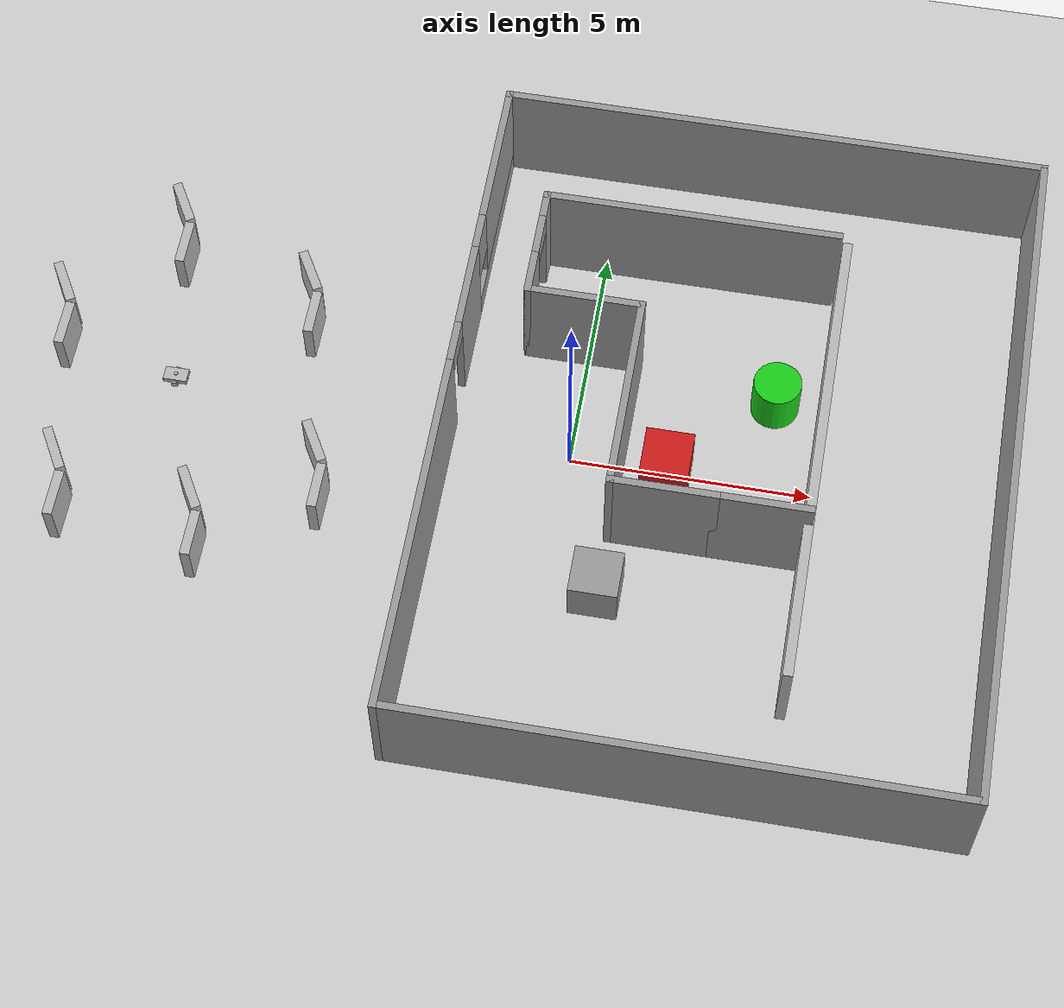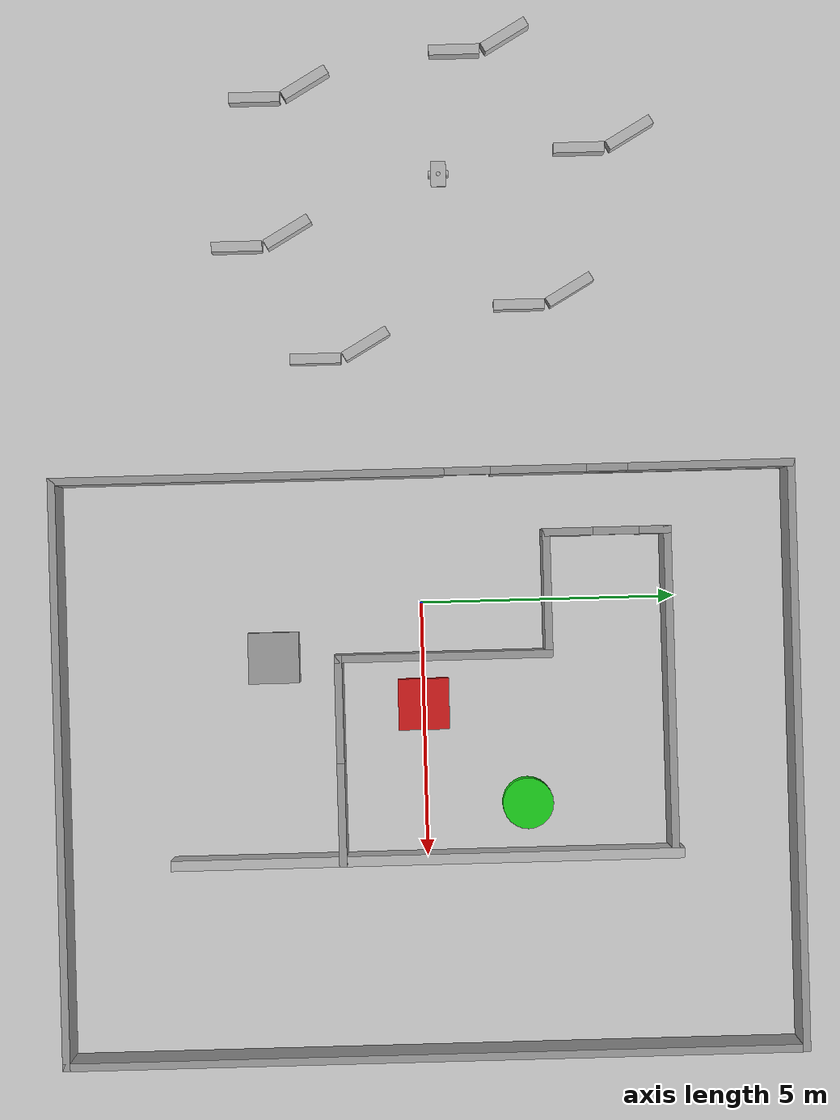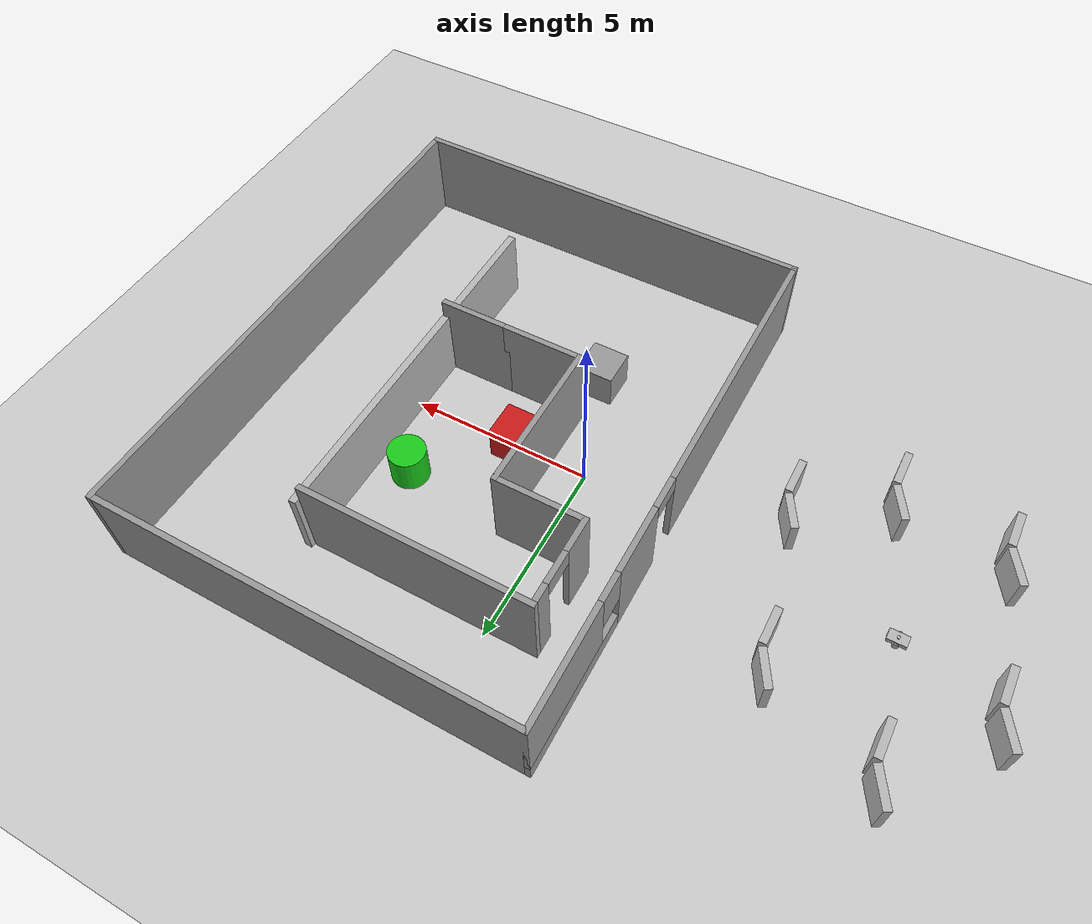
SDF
<sdf version="1.7">
 <world name="default">
  <light name="sun" type="directional">
   <pose>0 0 10 0 -0 0</pose>
   <diffuse>0.8 0.8 0.8 1</diffuse>
   <specular>0.2 0.2 0.2 1</specular>
   <attenuation>
    <range>1000</range>
    <constant>0.9</constant>
    <linear>0.01</linear>
    <quadratic>0.001</quadratic>
   </attenuation>
   <direction>-0.5 0.1 -0.9</direction>
   <spot><inner_angle>0</inner_angle><outer_angle>0</outer_angle><falloff>0</falloff></spot>
  </light>
  <model name="ground_plane">
   <static>1</static>
   <link name="link">
    <collision name="collision">
     <geometry><plane><normal>0 0 1</normal><size>100 100</size></plane></geometry>
     <surface>
      <contact><collide_bitmask>65535</collide_bitmask></contact>
      <friction><ode><mu>100</mu><mu2>50</mu2></ode></friction>
     </surface>
    </collision>
    <visual name="visual">
     <cast_shadows>0</cast_shadows>
     <geometry><plane><normal>0 0 1</normal><size>100 100</size></plane></geometry>
     <material>
      <script><uri>file://media/materials/scripts/gazebo.material</uri><name>Gazebo/Grey</name></script>
     </material>
    </visual>
   </link>
  </model>
  <physics type="ode">
   <max_step_size>0.001</max_step_size>
   <real_time_factor>1</real_time_factor>
   <real_time_update_rate>1000</real_time_update_rate>
  </physics>
  <model name="obstacle_1">
   <pose>2 0 0.5 0 -0 0</pose>
   <static>1</static>
   <link name="link">
    <collision name="collision"><geometry><box><size>1 1 1</size></box></geometry></collision>
    <visual name="visual">
     <geometry><box><size>1 1 1</size></box></geometry>
     <material><ambient>0.8 0.1 0.1 1</ambient></material>
    </visual>
   </link>
  </model>
  <model name="obstacle_2">
   <pose>4 2 0.5 0 -0 0</pose>
   <static>1</static>
   <link name="link">
    <collision name="collision">
     <geometry><cylinder><radius>0.5</radius><length>1</length></cylinder></geometry>
    </collision>
    <visual name="visual">
     <geometry><cylinder><radius>0.5</radius><length>1</length></cylinder></geometry>
     <material><ambient>0.1 0.8 0.1 1</ambient></material>
    </visual>
   </link>
  </model>
  <model name="wall_1">
   <pose>5 0 1 0 -0 0</pose>
   <static>1</static>
   <link name="link">
    <collision name="collision"><geometry><box><size>0.2 10 2</size></box></geometry></collision>
    <visual name="visual"><geometry><box><size>0.2 10 2</size></box></geometry></visual>
   </link>
  </model>
  <gravity>0 0 -9.8</gravity>
  <magnetic_field>6e-06 2.3e-05 -4.2e-05</magnetic_field>
  <atmosphere type="adiabatic"/>
  <scene><ambient>0.4 0.4 0.4 1</ambient><background>0.7 0.7 0.7 1</background><shadows>1</shadows></scene>
  <audio><device>default</device></audio>
  <spherical_coordinates>
   <surface_model>EARTH_WGS84</surface_model>
   <latitude_deg>0</latitude_deg>
   <longitude_deg>0</longitude_deg>
   <elevation>0</elevation>
   <heading_deg>0</heading_deg>
  </spherical_coordinates>
  <model name="my_robot">
   <link name="base_footprint">
    <inertial>
     <pose>0 0 0.078077 0 -0 0</pose>
     <mass>5.2</mass>
     <inertia>
      <ixx>0.0406808</ixx>
      <ixy>0</ixy>
      <ixz>-6.67201e-21</ixz>
      <iyy>0.108681</iyy>
      <iyz>0</iyz>
      <izz>0.1082</izz>
     </inertia>
    </inertial>
    <collision name="base_footprint_fixed_joint_lump__base_link_collision">
     <pose>0 0 0.14 0 -0 0</pose>
     <geometry><box><size>0.5 0.3 0.12</size></box></geometry>
    </collision>
    <collision name="base_footprint_fixed_joint_lump__front_caster_link_collision_1">
     <pose>0.2 0 0.03 0 -0 0</pose>
     <geometry><sphere><radius>0.03</radius></sphere></geometry>
     <surface><friction><ode><mu>0</mu><mu2>0</mu2></ode></friction></surface>
    </collision>
    <collision name="base_footprint_fixed_joint_lump__rear_caster_link_collision_2">
     <pose>-0.2 0 0.03 0 -0 0</pose>
     <geometry><sphere><radius>0.03</radius></sphere></geometry>
     <surface><friction><ode><mu>0</mu><mu2>0</mu2></ode></friction></surface>
    </collision>
    <visual name="base_footprint_fixed_joint_lump__base_link_visual">
     <pose>0 0 0.14 0 -0 0</pose>
     <geometry><box><size>0.5 0.3 0.12</size></box></geometry>
    </visual>
    <visual name="base_footprint_fixed_joint_lump__camera_link_visual_1">
     <pose>0.25 0 0.14 0 -0 0</pose>
     <geometry><box><size>0.02 0.05 0.03</size></box></geometry>
    </visual>
    <visual name="base_footprint_fixed_joint_lump__front_caster_link_visual_2">
     <pose>0.2 0 0.03 0 -0 0</pose>
     <geometry><sphere><radius>0.03</radius></sphere></geometry>
    </visual>
    <visual name="base_footprint_fixed_joint_lump__lidar_link_visual_3">
     <pose>0 0 0.2 0 -0 0</pose>
     <geometry><cylinder><length>0.05</length><radius>0.04</radius></cylinder></geometry>
    </visual>
    <visual name="base_footprint_fixed_joint_lump__rear_caster_link_visual_4">
     <pose>-0.2 0 0.03 0 -0 0</pose>
     <geometry><sphere><radius>0.03</radius></sphere></geometry>
    </visual>
    <sensor name="camera" type="camera">
     <update_rate>30</update_rate>
     <camera name="head">
      <horizontal_fov>1.39626</horizontal_fov>
      <image><width>640</width><height>480</height><format>R8G8B8</format></image>
      <clip><near>0.02</near><far>300</far></clip>
     </camera>
     <plugin name="camera_controller" filename="libgazebo_ros_camera.so">
      <frame_name>camera_link</frame_name>
     </plugin>
     <pose>0.25 0 0.14 0 -0 0</pose>
    </sensor>
    <sensor name="imu_sensor" type="imu">
     <plugin name="imu_plugin" filename="libgazebo_ros_imu_sensor.so">
      <ros><remapping>~/out:=imu</remapping></ros>
      <initial_orientation_as_reference>0</initial_orientation_as_reference>
     </plugin>
     <always_on>1</always_on>
     <update_rate>100</update_rate>
     <pose>0 0 0.14 0 -0 0</pose>
    </sensor>
    <sensor name="laser" type="ray">
     <visualize>0</visualize>
     <update_rate>10</update_rate>
     <ray>
      <scan>
       <horizontal>
        <samples>360</samples>
        <resolution>1</resolution>
        <min_angle>-3.14159</min_angle>
        <max_angle>3.14159</max_angle>
       </horizontal>
       <vertical><samples>1</samples><min_angle>0</min_angle><max_angle>0</max_angle></vertical>
      </scan>
      <range><min>0.12</min><max>10</max><resolution>0.015</resolution></range>
     </ray>
     <plugin name="laser_controller" filename="libgazebo_ros_ray_sensor.so">
      <ros><remapping>~/out:=scan</remapping></ros>
      <output_type>sensor_msgs/LaserScan</output_type>
      <frame_name>lidar_link</frame_name>
     </plugin>
     <pose>0 0 0.2 0 -0 0</pose>
    </sensor>
   </link>
   <joint name="left_wheel_joint" type="revolute">
    <pose relative_to="base_footprint">0 0.175 0.08 -1.5708 0 0</pose>
    <parent>base_footprint</parent>
    <child>left_wheel_link</child>
    <axis>
     <xyz>0 0 1</xyz>
     <limit><lower>-1e+16</lower><upper>1e+16</upper></limit>
     <dynamics><spring_reference>0</spring_reference><spring_stiffness>0</spring_stiffness></dynamics>
    </axis>
   </joint>
   <link name="left_wheel_link">
    <pose relative_to="left_wheel_joint">0 0 0 0 -0 0</pose>
    <inertial>
     <mass>0.5</mass>
     <inertia><ixx>0.001</ixx><ixy>0</ixy><ixz>0</ixz><iyy>0.001</iyy><iyz>0</iyz><izz>0.001</izz></inertia>
    </inertial>
    <collision name="left_wheel_link_collision">
     <geometry><cylinder><length>0.04</length><radius>0.08</radius></cylinder></geometry>
    </collision>
    <visual name="left_wheel_link_visual">
     <geometry><cylinder><length>0.04</length><radius>0.08</radius></cylinder></geometry>
    </visual>
   </link>
   <joint name="right_wheel_joint" type="revolute">
    <pose relative_to="base_footprint">0 -0.175 0.08 -1.5708 0 0</pose>
    <parent>base_footprint</parent>
    <child>right_wheel_link</child>
    <axis>
     <xyz>0 0 1</xyz>
     <limit><lower>-1e+16</lower><upper>1e+16</upper></limit>
     <dynamics><spring_reference>0</spring_reference><spring_stiffness>0</spring_stiffness></dynamics>
    </axis>
   </joint>
   <link name="right_wheel_link">
    <pose relative_to="right_wheel_joint">0 0 0 0 -0 0</pose>
    <inertial>
     <mass>0.5</mass>
     <inertia><ixx>0.001</ixx><ixy>0</ixy><ixz>0</ixz><iyy>0.001</iyy><iyz>0</iyz><izz>0.001</izz></inertia>
    </inertial>
    <collision name="right_wheel_link_collision">
     <geometry><cylinder><length>0.04</length><radius>0.08</radius></cylinder></geometry>
    </collision>
    <visual name="right_wheel_link_visual">
     <geometry><cylinder><length>0.04</length><radius>0.08</radius></cylinder></geometry>
    </visual>
   </link>
   <static>0</static>
   <plugin name="gazebo_ros2_control" filename="libgazebo_ros2_control.so">
    <parameters>/home/paul/ros/ros2_ws/install/my_robot/share/my_robot/config/ros2_controllers.yaml</parameters>
   </plugin>
   <pose>-8.46016 0.563479 0 0 -1e-06 0.002711</pose>
  </model>
  <model name="room_0">
   <pose>3.14337 0.06525 0 0 -0 0</pose>
   <link name="Wall_10">
    <collision name="Wall_10_Collision">
     <geometry><box><size>11.5 0.15 2.5</size></box></geometry>
     <pose>0 0 1.25 0 -0 0</pose>
    </collision>
    <visual name="Wall_10_Visual">
     <pose>0 0 1.25 0 -0 0</pose>
     <geometry><box><size>11.5 0.15 2.5</size></box></geometry>
     <material>
      <script><uri>file://media/materials/scripts/gazebo.material</uri><name>Gazebo/Grey</name></script>
      <ambient>1 1 1 1</ambient>
     </material>
     <meta><layer>0</layer></meta>
    </visual>
    <pose>-0 -7.175 0 0 -0 3.14159</pose>
   </link>
   <link name="Wall_12">
    <collision name="Wall_12_Collision">
     <geometry><box><size>6.25 0.15 2.5</size></box></geometry>
     <pose>0 0 1.25 0 -0 0</pose>
    </collision>
    <visual name="Wall_12_Visual">
     <pose>0 0 1.25 0 -0 0</pose>
     <geometry><box><size>6.25 0.15 2.5</size></box></geometry>
     <material>
      <script><uri>file://media/materials/scripts/gazebo.material</uri><name>Gazebo/Grey</name></script>
      <ambient>1 1 1 1</ambient>
     </material>
     <meta><layer>0</layer></meta>
    </visual>
    <pose>-1.39294 4.74294 0 0 -0 3.14159</pose>
   </link>
   <link name="Wall_13">
    <pose>-4.44294 3.56794 0 0 -0 -1.5708</pose>
    <visual name="Wall_13_Visual_0">
     <pose>-0.939033 0 1.25 0 -0 0</pose>
     <geometry><box><size>0.621934 0.15 2.5</size></box></geometry>
     <material>
      <script><uri>file://media/materials/scripts/gazebo.material</uri><name>Gazebo/Grey</name></script>
      <ambient>1 1 1 1</ambient>
     </material>
     <meta><layer>0</layer></meta>
    </visual>
    <collision name="Wall_13_Collision_0">
     <geometry><box><size>0.621934 0.15 2.5</size></box></geometry>
     <pose>-0.939033 0 1.25 0 -0 0</pose>
    </collision>
    <visual name="Wall_13_Visual_1">
     <pose>0.760967 0 1.25 0 -0 0</pose>
     <geometry><box><size>0.978066 0.15 2.5</size></box></geometry>
     <material>
      <script><uri>file://media/materials/scripts/gazebo.material</uri><name>Gazebo/Grey</name></script>
      <ambient>1 1 1 1</ambient>
     </material>
     <meta><layer>0</layer></meta>
    </visual>
    <collision name="Wall_13_Collision_1">
     <geometry><box><size>0.978066 0.15 2.5</size></box></geometry>
     <pose>0.760967 0 1.25 0 -0 0</pose>
    </collision>
    <visual name="Wall_13_Visual_2">
     <pose>-0.178066 0 2.25 0 -0 0</pose>
     <geometry><box><size>0.9 0.15 0.5</size></box></geometry>
     <material>
      <script><uri>file://media/materials/scripts/gazebo.material</uri><name>Gazebo/Grey</name></script>
      <ambient>1 1 1 1</ambient>
     </material>
     <meta><layer>0</layer></meta>
    </visual>
    <collision name="Wall_13_Collision_2">
     <geometry><box><size>0.9 0.15 0.5</size></box></geometry>
     <pose>-0.178066 0 2.25 0 -0 0</pose>
    </collision>
   </link>
   <link name="Wall_14">
    <collision name="Wall_14_Collision">
     <geometry><box><size>2.5 0.15 2.5</size></box></geometry>
     <pose>0 0 1.25 0 -0 0</pose>
    </collision>
    <visual name="Wall_14_Visual">
     <pose>0 0 1.25 0 -0 0</pose>
     <geometry><box><size>2.5 0.15 2.5</size></box></geometry>
     <material>
      <script><uri>file://media/materials/scripts/gazebo.material</uri><name>Gazebo/Grey</name></script>
      <ambient>1 1 1 1</ambient>
     </material>
     <meta><layer>0</layer></meta>
    </visual>
    <pose>-3.26794 2.39294 0 0 -0 0</pose>
   </link>
   <link name="Wall_15">
    <collision name="Wall_15_Collision">
     <geometry><box><size>4.25 0.15 2.5</size></box></geometry>
     <pose>0 0 1.25 0 -0 0</pose>
    </collision>
    <visual name="Wall_15_Visual">
     <pose>0 0 1.25 0 -0 0</pose>
     <geometry><box><size>4.25 0.15 2.5</size></box></geometry>
     <material>
      <script><uri>file://media/materials/scripts/gazebo.material</uri><name>Gazebo/Grey</name></script>
      <ambient>1 1 1 1</ambient>
     </material>
     <meta><layer>0</layer></meta>
    </visual>
    <pose>-2.09294 0.342936 0 0 -0 -1.5708</pose>
   </link>
   <link name="Wall_16">
    <collision name="Wall_16_Collision">
     <geometry><box><size>2.25 0.15 2.5</size></box></geometry>
     <pose>0 0 1.25 0 -0 0</pose>
    </collision>
    <visual name="Wall_16_Visual">
     <pose>0 0 1.25 0 -0 0</pose>
     <geometry><box><size>2.25 0.15 2.5</size></box></geometry>
     <material>
      <script><uri>file://media/materials/scripts/gazebo.material</uri><name>Gazebo/Grey</name></script>
      <ambient>1 1 1 1</ambient>
     </material>
     <meta><layer>0</layer></meta>
    </visual>
    <pose>-1.04293 -1.70706 0 0 -0 0</pose>
   </link>
   <link name="Wall_18">
    <collision name="Wall_18_Collision">
     <geometry><box><size>2 0.15 2.5</size></box></geometry>
     <pose>0 0 1.25 0 -0 0</pose>
    </collision>
    <visual name="Wall_18_Visual">
     <pose>0 0 1.25 0 -0 0</pose>
     <geometry><box><size>2 0.15 2.5</size></box></geometry>
     <material>
      <script><uri>file://media/materials/scripts/gazebo.material</uri><name>Gazebo/Grey</name></script>
      <ambient>1 1 1 1</ambient>
     </material>
     <meta><layer>0</layer></meta>
    </visual>
    <pose>0.932065 -1.70706 0 0 -0 0</pose>
   </link>
   <link name="Wall_7">
    <pose>-5.675 0 0 0 -0 1.5708</pose>
    <visual name="Wall_7_Visual_0">
     <pose>-3.40244 0 1.25 0 -0 0</pose>
     <geometry><box><size>7.69512 0.15 2.5</size></box></geometry>
     <material>
      <script><uri>file://media/materials/scripts/gazebo.material</uri><name>Gazebo/Grey</name></script>
      <ambient>1 1 1 1</ambient>
     </material>
     <meta><layer>0</layer></meta>
    </visual>
    <collision name="Wall_7_Collision_0">
     <geometry><box><size>7.69512 0.15 2.5</size></box></geometry>
     <pose>-3.40244 0 1.25 0 -0 0</pose>
    </collision>
    <visual name="Wall_7_Visual_1">
     <pose>2.2756 0 1.25 0 -0 0</pose>
     <geometry><box><size>1.86096 0.15 2.5</size></box></geometry>
     <material>
      <script><uri>file://media/materials/scripts/gazebo.material</uri><name>Gazebo/Grey</name></script>
      <ambient>1 1 1 1</ambient>
     </material>
     <meta><layer>0</layer></meta>
    </visual>
    <collision name="Wall_7_Collision_1">
     <geometry><box><size>1.86096 0.15 2.5</size></box></geometry>
     <pose>2.2756 0 1.25 0 -0 0</pose>
    </collision>
    <visual name="Wall_7_Visual_2">
     <pose>5.22804 0 0.25 0 -0 0</pose>
     <geometry><box><size>4.04392 0.15 0.5</size></box></geometry>
     <material>
      <script><uri>file://media/materials/scripts/gazebo.material</uri><name>Gazebo/Grey</name></script>
      <ambient>1 1 1 1</ambient>
     </material>
     <meta><layer>0</layer></meta>
    </visual>
    <collision name="Wall_7_Collision_2">
     <geometry><box><size>4.04392 0.15 0.5</size></box></geometry>
     <pose>5.22804 0 0.25 0 -0 0</pose>
    </collision>
    <visual name="Wall_7_Visual_3">
     <pose>5.62804 0 1.5 0 -0 0</pose>
     <geometry><box><size>3.24392 0.15 2</size></box></geometry>
     <material>
      <script><uri>file://media/materials/scripts/gazebo.material</uri><name>Gazebo/Grey</name></script>
      <ambient>1 1 1 1</ambient>
     </material>
     <meta><layer>0</layer></meta>
    </visual>
    <collision name="Wall_7_Collision_3">
     <geometry><box><size>3.24392 0.15 2</size></box></geometry>
     <pose>5.62804 0 1.5 0 -0 0</pose>
    </collision>
    <visual name="Wall_7_Visual_4">
     <pose>3.60608 0 1.9 0 -0 0</pose>
     <geometry><box><size>0.8 0.15 1.2</size></box></geometry>
     <material>
      <script><uri>file://media/materials/scripts/gazebo.material</uri><name>Gazebo/Grey</name></script>
      <ambient>1 1 1 1</ambient>
     </material>
     <meta><layer>0</layer></meta>
    </visual>
    <collision name="Wall_7_Collision_4">
     <geometry><box><size>0.8 0.15 1.2</size></box></geometry>
     <pose>3.60608 0 1.9 0 -0 0</pose>
    </collision>
    <visual name="Wall_7_Visual_5">
     <pose>0.895122 0 2.25 0 -0 0</pose>
     <geometry><box><size>0.9 0.15 0.5</size></box></geometry>
     <material>
      <script><uri>file://media/materials/scripts/gazebo.material</uri><name>Gazebo/Grey</name></script>
      <ambient>1 1 1 1</ambient>
     </material>
     <meta><layer>0</layer></meta>
    </visual>
    <collision name="Wall_7_Collision_5">
     <geometry><box><size>0.9 0.15 0.5</size></box></geometry>
     <pose>0.895122 0 2.25 0 -0 0</pose>
    </collision>
   </link>
   <link name="Wall_8">
    <collision name="Wall_8_Collision">
     <geometry><box><size>11.5 0.15 2.5</size></box></geometry>
     <pose>0 0 1.25 0 -0 0</pose>
    </collision>
    <visual name="Wall_8_Visual">
     <pose>0 0 1.25 0 -0 0</pose>
     <geometry><box><size>11.5 0.15 2.5</size></box></geometry>
     <material>
      <script><uri>file://media/materials/scripts/gazebo.material</uri><name>Gazebo/Grey</name></script>
      <ambient>1 1 1 1</ambient>
     </material>
     <meta><layer>0</layer></meta>
    </visual>
    <pose>-0 7.175 0 0 -0 0</pose>
   </link>
   <link name="Wall_9">
    <collision name="Wall_9_Collision">
     <geometry><box><size>14.5 0.15 2.5</size></box></geometry>
     <pose>0 0 1.25 0 -0 0</pose>
    </collision>
    <visual name="Wall_9_Visual">
     <pose>0 0 1.25 0 -0 0</pose>
     <geometry><box><size>14.5 0.15 2.5</size></box></geometry>
     <material>
      <script><uri>file://media/materials/scripts/gazebo.material</uri><name>Gazebo/Grey</name></script>
      <ambient>1 1 1 1</ambient>
     </material>
     <meta><layer>0</layer></meta>
    </visual>
    <pose>5.675 0 0 0 -0 -1.5708</pose>
   </link>
   <static>1</static>
  </model>
  <model name="unit_box">
   <pose>1.0157 -2.92609 0.5 0 -0 0</pose>
   <link name="link">
    <inertial>
     <mass>1</mass>
     <inertia>
      <ixx>0.166667</ixx>
      <ixy>0</ixy>
      <ixz>0</ixz>
      <iyy>0.166667</iyy>
      <iyz>0</iyz>
      <izz>0.166667</izz>
     </inertia>
    </inertial>
    <collision name="collision"><geometry><box><size>1 1 1</size></box></geometry></collision>
    <visual name="visual">
     <geometry><box><size>1 1 1</size></box></geometry>
     <material>
      <script><name>Gazebo/Grey</name><uri>file://media/materials/scripts/gazebo.material</uri></script>
     </material>
    </visual>
   </link>
  </model>
  <model name="circular_wall_hollow">
   <static>1</static>
   <link name="wall_1">
    <pose>2 0 0.5 0 -0 0</pose>
    <visual name="visual"><geometry><box><size>0.2 1 1</size></box></geometry></visual>
    <collision name="collision"><geometry><box><size>0.2 1 1</size></box></geometry></collision>
   </link>
   <link name="wall_2">
    <pose>1.732 1 0.5 0 -0 0.5236</pose>
    <visual name="visual"><geometry><box><size>0.2 1 1</size></box></geometry></visual>
    <collision name="collision"><geometry><box><size>0.2 1 1</size></box></geometry></collision>
   </link>
   <pose>-7.80509 2.0826 0 0 -0 0</pose>
  </model>
  <model name="circular_wall_hollow_0">
   <static>1</static>
   <link name="wall_1">
    <pose>2 0 0.5 0 -0 0</pose>
    <visual name="visual"><geometry><box><size>0.2 1 1</size></box></geometry></visual>
    <collision name="collision"><geometry><box><size>0.2 1 1</size></box></geometry></collision>
   </link>
   <link name="wall_2">
    <pose>1.732 1 0.5 0 -0 0.5236</pose>
    <visual name="visual"><geometry><box><size>0.2 1 1</size></box></geometry></visual>
    <collision name="collision"><geometry><box><size>0.2 1 1</size></box></geometry></collision>
   </link>
   <pose>-6.84607 -1.95224 0 0 -0 0</pose>
  </model>
  <model name="circular_wall_hollow_1">
   <static>1</static>
   <link name="wall_1">
    <pose>2 0 0.5 0 -0 0</pose>
    <visual name="visual"><geometry><box><size>0.2 1 1</size></box></geometry></visual>
    <collision name="collision"><geometry><box><size>0.2 1 1</size></box></geometry></collision>
   </link>
   <link name="wall_2">
    <pose>1.732 1 0.5 0 -0 0.5236</pose>
    <visual name="visual"><geometry><box><size>0.2 1 1</size></box></geometry></visual>
    <collision name="collision"><geometry><box><size>0.2 1 1</size></box></geometry></collision>
   </link>
   <pose>-10.8581 3.34098 0 0 -0 0</pose>
  </model>
  <model name="circular_wall_hollow_2">
   <static>1</static>
   <link name="wall_1">
    <pose>2 0 0.5 0 -0 0</pose>
    <visual name="visual"><geometry><box><size>0.2 1 1</size></box></geometry></visual>
    <collision name="collision"><geometry><box><size>0.2 1 1</size></box></geometry></collision>
   </link>
   <link name="wall_2">
    <pose>1.732 1 0.5 0 -0 0.5236</pose>
    <visual name="visual"><geometry><box><size>0.2 1 1</size></box></geometry></visual>
    <collision name="collision"><geometry><box><size>0.2 1 1</size></box></geometry></collision>
   </link>
   <pose>-9.08985 -3.43887 0 0 -0 0</pose>
  </model>
  <model name="circular_wall_hollow_3">
   <static>1</static>
   <link name="wall_1">
    <pose>2 0 0.5 0 -0 0</pose>
    <visual name="visual"><geometry><box><size>0.2 1 1</size></box></geometry></visual>
    <collision name="collision"><geometry><box><size>0.2 1 1</size></box></geometry></collision>
   </link>
   <link name="wall_2">
    <pose>1.732 1 0.5 0 -0 0.5236</pose>
    <visual name="visual"><geometry><box><size>0.2 1 1</size></box></geometry></visual>
    <collision name="collision"><geometry><box><size>0.2 1 1</size></box></geometry></collision>
   </link>
   <pose>-12.8464 0.936083 0 0 -0 0</pose>
  </model>
  <model name="circular_wall_hollow_4">
   <static>1</static>
   <link name="wall_1">
    <pose>2 0 0.5 0 -0 0</pose>
    <visual name="visual"><geometry><box><size>0.2 1 1</size></box></geometry></visual>
    <collision name="collision"><geometry><box><size>0.2 1 1</size></box></geometry></collision>
   </link>
   <link name="wall_2">
    <pose>1.732 1 0.5 0 -0 0.5236</pose>
    <visual name="visual"><geometry><box><size>0.2 1 1</size></box></geometry></visual>
    <collision name="collision"><geometry><box><size>0.2 1 1</size></box></geometry></collision>
   </link>
   <pose>-12.0115 -3.02164 0 0 -0 0</pose>
  </model>
 </world>
</sdf>
